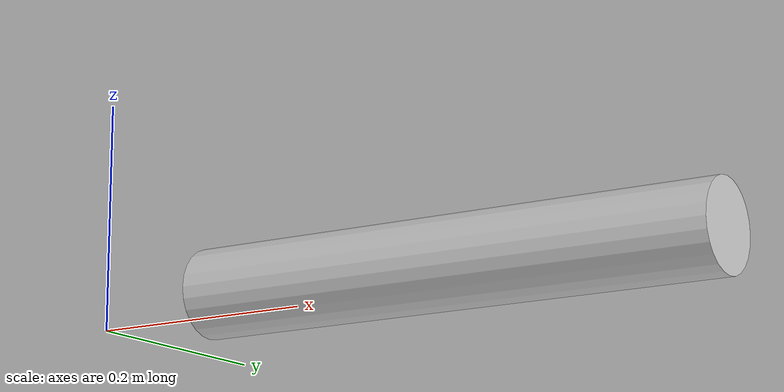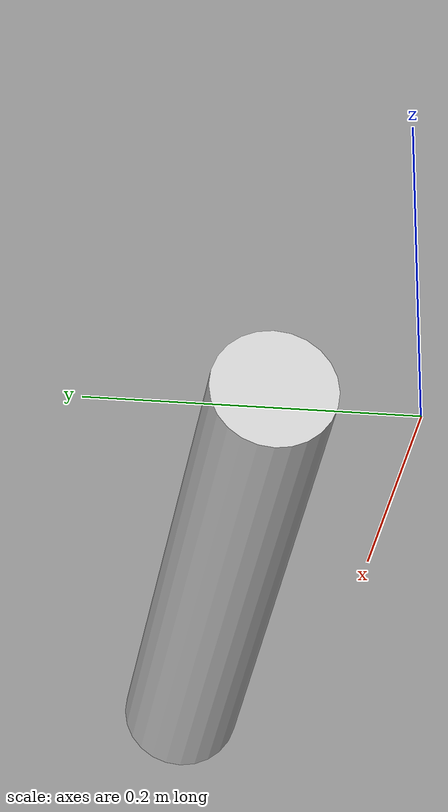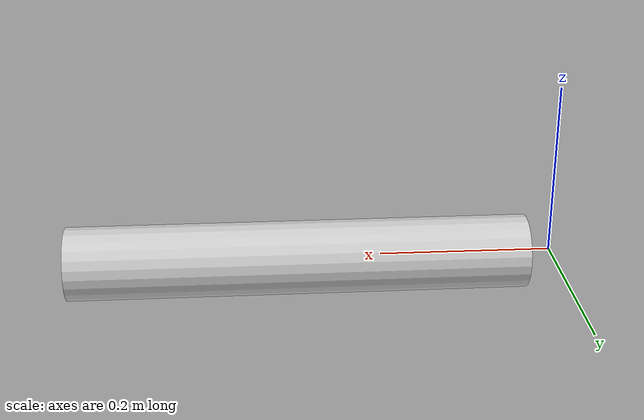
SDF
<?xml version="1.0" ?>
<sdf version="1.7">
  <model name="pipe_system">
    <link name="pipe_assembly">
      <visual name="pipe_visual">
        <geometry>
          <cylinder>
            <radius>0.04</radius>
            <length>0.5</length>
          </cylinder>
        </geometry>
        <material>
          <ambient>0.8 0.8 0.8 1</ambient>
        </material>
      </visual>
      <visual name="insulation_visual">
        <geometry>
          <cylinder>
            <radius>0.04</radius>
            <length>0.5</length>
          </cylinder>
        </geometry>
        <material>
          <ambient>0.9 0.9 0.7 1</ambient>
        </material>
      </visual>
      <collision name="pipe_collision">
       <geometry>
         <cylinder>
           <radius>0.04</radius>
           <length>0.5</length>
         </cylinder>
       </geometry>
        <surface>
          <friction>
            <ode>
             <mu>1.2</mu>
             <mu2>1.2</mu2>
            </ode>
          </friction>
          <contact>
            <ode>
             <kp>1e6</kp>
             <kd>100</kd>
             <max_vel>0.2</max_vel>
             <min_depth>0.002</min_depth>
            </ode>
          </contact>
        </surface>
      </collision>
      <inertial>
        <mass>2</mass>
        <inertia>
          <ixx>0.0068</ixx>
          <ixy>0.001</ixy>
          <ixz>0.001</ixz>
          <iyy>0.0406</iyy>
          <iyz>0.001</iyz>
          <izz>0.0406</izz>
        </inertia>
      </inertial>
      <!-- Rotated pipe to lay horizontally on the ground -->
      <pose>0.30 0.08 0.04 0 1.5708 0</pose>
    </link>
    <static>false</static>
    <gravity>0</gravity>
  </model>
</sdf>
